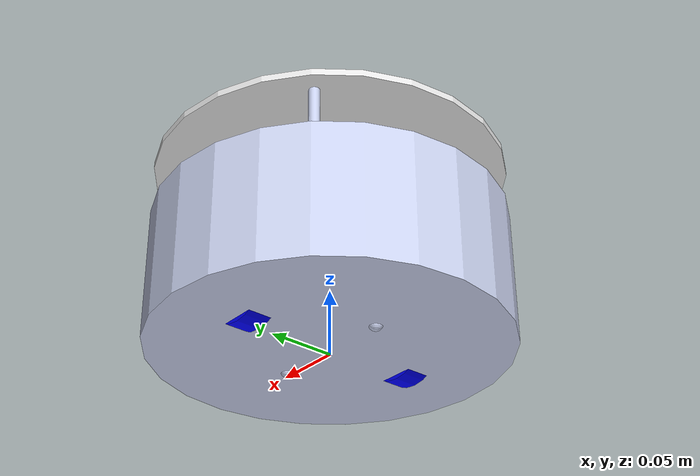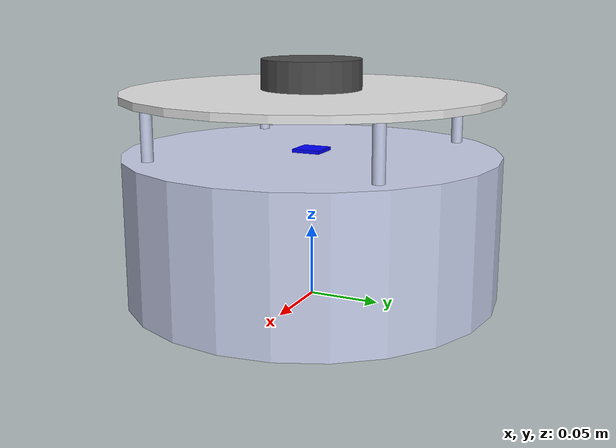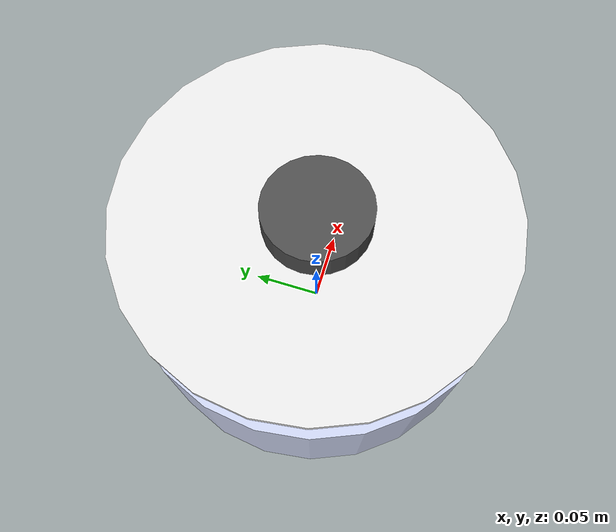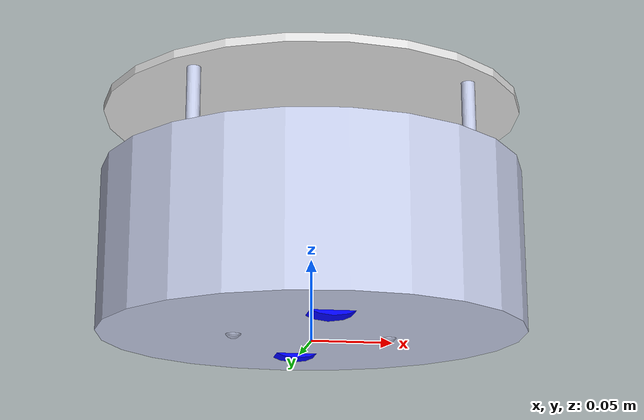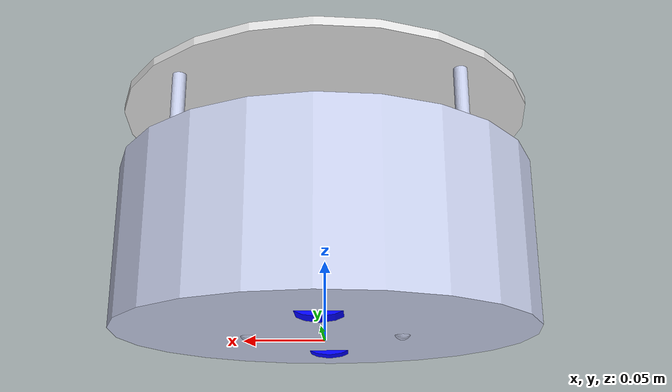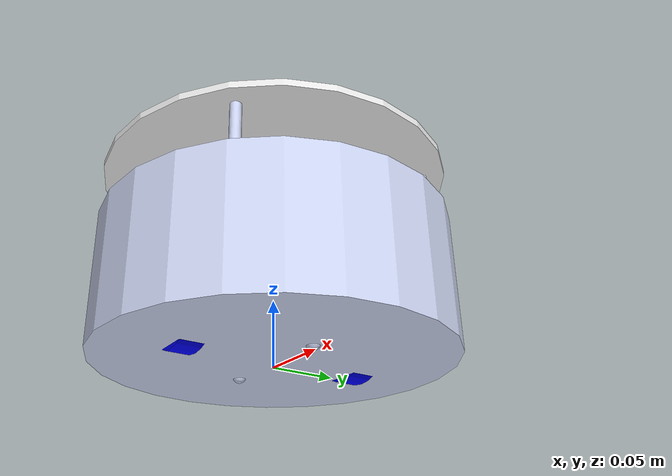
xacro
<?xml version="1.0"?>
<robot name="atlas" xmlns:xacro="http://ros.org/wiki/xacro">

    <!-- Load Simulated or Real Hardware Interfaces -->
    <xacro:arg name="is_sim" default="true"/>

    <!-- Include Gazebo Parameters -->
    <xacro:include filename="$(find atlas_description)/urdf/atlas_gazebo.xacro" />

    <!-- Include ros2_control Plugins -->
    <xacro:include filename="$(find atlas_description)/urdf/atlas_ros2_control.xacro" />

    <!-- Materials -->
    <material name="blue">
        <color rgba="0 0 1 1"/>
    </material>
    <material name="black">
        <color rgba="0.1 0.1 0.1 1"/>
    </material>
    <material name="silver">
        <color rgba="0.79 0.82 0.93 1"/>
    </material>
    <material name="dark_grey">
        <color rgba="0.3 0.3 0.3 1"/>
    </material>
    <material name="white">
        <color rgba="0.9 0.9 0.9 1"/>
    </material>

    <!-- Base Footprint -->
    <link name="base_footprint"/>

    <!-- Base Link (Main Chassis Cylinder) -->
    <link name="base_link">
        <inertial>
            <origin xyz="0 0 0.04" rpy="0.0 0.25 0.3" />
            <mass value="8.2573504e-01"/>
            <inertia ixx="2.2124416e-02" ixy="-1.2294101e-04" ixz="3.4938785e-04"
                    iyy="2.1193702e-02" iyz="-5.0120904e-05"
                    izz="2.0064271e-02" />
        </inertial>
        <visual>
            <origin xyz="0 0 0.02" rpy="0 0 0" />
            <geometry>
                <cylinder radius="0.13" length="0.10"/>
            </geometry>
            <material name="silver"/>
        </visual>
        <collision>
            <origin xyz="0 0 0.02" rpy="0 0 0" />
            <geometry>
                <cylinder radius="0.13" length="0.10"/>
            </geometry>
        </collision>
    </link>

    <joint name="base_joint" type="fixed">
        <parent link="base_footprint"/>
        <child link="base_link" />
        <origin xyz="0 0 0.033" rpy="0 0 0"/>
    </joint>

    <!-- Top Plate -->
    <link name="top_plate">
        <visual>
            <origin xyz="0 0 0" rpy="0 0 0"/>
            <geometry>
                <cylinder radius="0.13" length="0.005"/>
            </geometry>
            <material name="white"/>
        </visual>
        <collision>
            <origin xyz="0 0 0" rpy="0 0 0"/>
            <geometry>
                <cylinder radius="0.13" length="0.005"/>
            </geometry>
        </collision>
    </link>

    <joint name="top_plate_joint" type="fixed">
        <parent link="base_link"/>
        <child link="top_plate"/>
        <origin xyz="0 0 0.11" rpy="0 0 0"/>
    </joint>

    <!-- Standoffs -->
    <link name="standoff_1">
        <visual>
            <geometry>
                <cylinder radius="0.004" length="0.04"/>
            </geometry>
            <material name="silver"/>
        </visual>
    </link>
    <joint name="standoff_1_joint" type="fixed">
        <parent link="base_link"/>
        <child link="standoff_1"/>
        <origin xyz="0.08 0.08 0.09" rpy="0 0 0"/>
    </joint>

    <link name="standoff_2">
        <visual>
            <geometry>
                <cylinder radius="0.004" length="0.04"/>
            </geometry>
            <material name="silver"/>
        </visual>
    </link>
    <joint name="standoff_2_joint" type="fixed">
        <parent link="base_link"/>
        <child link="standoff_2"/>
        <origin xyz="-0.08 0.08 0.09" rpy="0 0 0"/>
    </joint>

    <link name="standoff_3">
        <visual>
            <geometry>
                <cylinder radius="0.004" length="0.04"/>
            </geometry>
            <material name="silver"/>
        </visual>
    </link>
    <joint name="standoff_3_joint" type="fixed">
        <parent link="base_link"/>
        <child link="standoff_3"/>
        <origin xyz="-0.08 -0.08 0.09" rpy="0 0 0"/>
    </joint>

    <link name="standoff_4">
        <visual>
            <geometry>
                <cylinder radius="0.004" length="0.04"/>
            </geometry>
            <material name="silver"/>
        </visual>
    </link>
    <joint name="standoff_4_joint" type="fixed">
        <parent link="base_link"/>
        <child link="standoff_4"/>
        <origin xyz="0.08 -0.08 0.09" rpy="0 0 0"/>
    </joint>

    <!-- Right Wheel -->
    <link name="wheel_right_link">
        <inertial>
            <origin xyz="0 -0.014 0" rpy="0 0 0" />
            <mass value="0.0530086090966721" />
            <inertia ixx="1.88176298336665E-05" ixy="-4.8444933029987E-10" ixz="1.88163708851143E-08"
                    iyy="3.11510738647764E-05" iyz="-6.93560663069607E-11"
                    izz="1.8801969558182E-05" />
        </inertial>
        <visual>
            <origin xyz="0 0 0" rpy="1.570796 0 0" />
            <geometry>
                <cylinder radius="0.033" length="0.018"/>
            </geometry>
            <material name="blue"/>
        </visual>
        <collision>
            <origin xyz="0 -0.015 0" rpy="1.570796 0 0" />
            <geometry>
                <sphere radius="0.033"/>
            </geometry>
        </collision>
    </link>

    <joint name="wheel_right_joint" type="continuous">
        <origin xyz="0 -0.0701101849418637 0" rpy="0 0 0" />
        <parent link="base_link" />
        <child link="wheel_right_link" />
        <axis xyz="0 1 0" />
    </joint>

    <!-- Left Wheel -->
    <link name="wheel_left_link">
        <inertial>
            <origin xyz="0 0.014 0" rpy="0 0 0" />
            <mass value="0.0530086043217644" />
            <inertia ixx="1.8792911368909E-05" ixy="3.31256392204584E-10" ixz="-1.14082001662767E-08"
                    iyy="3.11510738759073E-05" iyz="-3.60499245082192E-10"
                    izz="1.88266886146847E-05" />
        </inertial>
        <visual>
            <origin xyz="0 0 0" rpy="-1.570796 0 0" />
            <geometry>
                <cylinder radius="0.033" length="0.018"/>
            </geometry>
            <material name="blue"/>
        </visual>
        <collision>
            <origin xyz="0 0.015 0" rpy="-1.570796 0 0" />
            <geometry>
                <sphere radius="0.033"/>
            </geometry>
        </collision>
    </link>

    <joint name="wheel_left_joint" type="continuous">
        <origin xyz="0 0.0701101849418642 0" rpy="0 0 0" />
        <parent link="base_link" />
        <child link="wheel_left_link" />
        <axis xyz="0 1 0" />
    </joint>

    <!-- Front Caster -->
    <link name="caster_front_link">
        <inertial>
            <origin xyz="3.89968128948481E-07 2.40073004698083E-07 0.00219173397061506" rpy="0 0 0" />
            <mass value="1.44379265037903E-06" />
            <inertia ixx="7.23075276010246E-11" ixy="-6.10956883467859E-16" ixz="2.22849693525031E-15"
                    iyy="3.8713793085917E-11" iyz="2.93909858781952E-15"
                    izz="1.00967486676306E-10" />
        </inertial>
        <visual>
            <origin xyz="0 0 0" rpy="0 0 0" />
            <geometry>
                <sphere radius="0.0055"/>
            </geometry>
            <material name="silver"/>
        </visual>
        <collision>
            <origin xyz="0 0 0" rpy="0 0 0" />
            <geometry>
                <sphere radius="0.0055"/>
            </geometry>
        </collision>
    </link>

    <joint name="caster_front_joint" type="fixed">
        <origin xyz="0.04755 0 -0.0275" rpy="0 0 0" />
        <parent link="base_link" />
        <child link="caster_front_link" />
        <axis xyz="0 0 0" />
    </joint>

    <!-- Rear Caster -->
    <link name="caster_rear_link">
        <inertial>
            <origin xyz="3.8996812895542E-07 2.40073004698083E-07 0.00219173397061509" rpy="0 0 0" />
            <mass value="1.44379265037902E-06" />
            <inertia ixx="7.23075276010246E-11" ixy="-6.10956872363424E-16" ixz="2.22849693527207E-15"
                    iyy="3.87137930859167E-11" iyz="2.939098587861E-15"
                    izz="1.00967486676306E-10" />
        </inertial>
        <visual>
            <origin xyz="0 0 0" rpy="0 0 0" />
            <geometry>
                <sphere radius="0.0055"/>
            </geometry>
            <material name="silver"/>
        </visual>
        <collision>
            <origin xyz="0 0 0" rpy="0 0 0" />
            <geometry>
                <sphere radius="0.0055"/>
            </geometry>
        </collision>
    </link>

    <joint name="caster_rear_joint" type="fixed">
        <origin xyz="-0.04755 0 -0.0275" rpy="0 0 0" />
        <parent link="base_link" />
        <child link="caster_rear_link" />
        <axis xyz="0 0 0" />
    </joint>

    <!-- IMU -->
    <link name="imu_link">
        <inertial>
            <origin xyz="-0.00552433659106688 0.000168210391520346 0.000514000497342681" rpy="0 0 0" />
            <mass value="0.000528415362211671" />
            <inertia ixx="1.46176048428261E-08" ixy="1.40015117949421E-10" ixz="-1.99633872937403E-12"
                    iyy="8.59662482954888E-09" iyz="7.52375112767959E-12"
                    izz="2.30279421279312E-08" />
        </inertial>
        <visual>
            <origin xyz="0 0 0" rpy="0 0 0" />
            <geometry>
                <box size="0.02 0.02 0.005"/>
            </geometry>
            <material name="blue"/>
        </visual>
        <collision>
            <origin xyz="0 0 0" rpy="0 0 0" />
            <geometry>
                <box size="0.02 0.02 0.005"/>
            </geometry>
        </collision>
    </link>

    <joint name="imu_joint" type="fixed">
        <origin xyz="0 0 0.0698986241758014" rpy="0 0 0" />
        <parent link="base_link" />
        <child link="imu_link" />
        <axis xyz="0 0 0" />
    </joint>

    <!-- LiDAR Laser Link -->
    <link name="laser_link">
        <inertial>
            <origin xyz="-0.011945780406062 -0.000381929217680526 -0.0170649378129477" rpy="0 0 0" />
            <mass value="0.073084435549317" />
            <inertia ixx="1.96074931730795E-05" ixy="-3.62091076640009E-07" ixz="4.28230084046735E-07"
                    iyy="2.40983835136327E-05" iyz="1.50180909250652E-08"
                    izz="4.14184164228595E-05" />
        </inertial>
        <visual>
            <origin xyz="0 0 0" rpy="0 0 0" />
            <geometry>
                <cylinder radius="0.035" length="0.025"/>
            </geometry>
            <material name="dark_grey"/>
        </visual>
        <collision>
            <origin xyz="0 0 0" rpy="0 0 0" />
            <geometry>
                <cylinder radius="0.035" length="0.025"/>
            </geometry>
        </collision>
    </link>

    <joint name="laser_joint" type="fixed">
        <origin xyz="-0.0050526 -0.0023221 0.1208" rpy="0 0 3.14" />
        <parent link="base_link" />
        <child link="laser_link" />
        <axis xyz="0 0 0" />
    </joint>

</robot>
